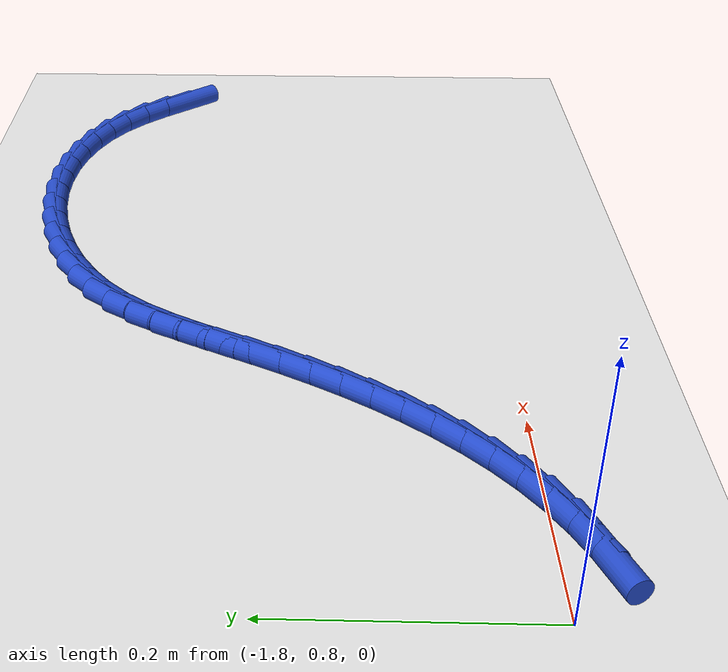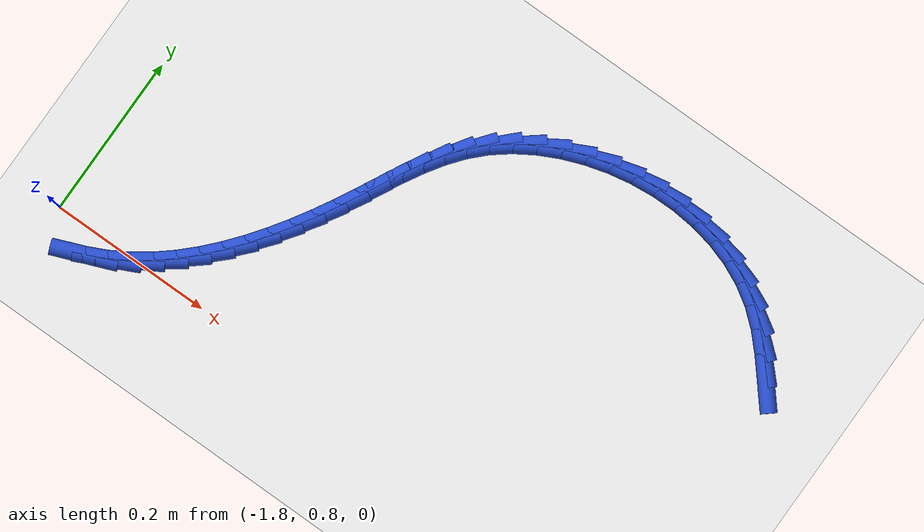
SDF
<sdf version="1.6">
 <world name="default">
  <model name="ground_plane">
   <static>1</static>
   <link name="link">
    <collision name="collision">
     <geometry><plane><normal>0 0 1</normal><size>100 100</size></plane></geometry>
     <surface><friction><ode><mu>100</mu><mu2>50</mu2></ode></friction></surface>
    </collision>
    <visual name="visual">
     <cast_shadows>0</cast_shadows>
     <geometry><plane><normal>0 0 1</normal><size>100 100</size></plane></geometry>
     <material>
      <script><uri>file://media/materials/scripts/gazebo.material</uri><name>Gazebo/WhiteGlow</name></script>
     </material>
    </visual>
   </link>
  </model>
  <model name="line">
   <link name="link_69">
    <pose>-1.031463528174129 1.1080222814655913 0.01 0 1.57 -0.8649918103429828</pose>
    <collision name="collision">
     <geometry><cylinder><radius>0.01</radius><length>0.08</length></cylinder></geometry>
    </collision>
    <visual name="visual">
     <material>
      <script><name>Gazebo/Blue</name><uri>file://media/materials/scripts/gazebo.material</uri></script>
     </material>
     <geometry><cylinder><radius>0.01</radius><length>0.08</length></cylinder></geometry>
    </visual>
   </link>
   <link name="link_70">
    <pose>-1.0502128655851939 1.130021838430915 0.01 0 1.57 -0.8063911086124225</pose>
    <collision name="collision">
     <geometry><cylinder><radius>0.01</radius><length>0.08</length></cylinder></geometry>
    </collision>
    <visual name="visual">
     <material>
      <script><name>Gazebo/Blue</name><uri>file://media/materials/scripts/gazebo.material</uri></script>
     </material>
     <geometry><cylinder><radius>0.01</radius><length>0.08</length></cylinder></geometry>
    </visual>
   </link>
   <link name="link_71">
    <pose>-1.0701868591447605 1.1508525691921232 0.01 0 1.57 -0.6985569765102941</pose>
    <collision name="collision">
     <geometry><cylinder><radius>0.01</radius><length>0.08</length></cylinder></geometry>
    </collision>
    <visual name="visual">
     <material>
      <script><name>Gazebo/Blue</name><uri>file://media/materials/scripts/gazebo.material</uri></script>
     </material>
     <geometry><cylinder><radius>0.01</radius><length>0.08</length></cylinder></geometry>
    </visual>
   </link>
   <link name="link_72">
    <pose>-1.0920416746841424 1.1692067808503241 0.01 0 1.57 -0.5595140066091934</pose>
    <collision name="collision">
     <geometry><cylinder><radius>0.01</radius><length>0.08</length></cylinder></geometry>
    </collision>
    <visual name="visual">
     <material>
      <script><name>Gazebo/Blue</name><uri>file://media/materials/scripts/gazebo.material</uri></script>
     </material>
     <geometry><cylinder><radius>0.01</radius><length>0.08</length></cylinder></geometry>
    </visual>
   </link>
   <link name="link_73">
    <pose>-1.1160795489195625 1.184261045742481 0.01 0 1.57 -0.4267110209482854</pose>
    <collision name="collision">
     <geometry><cylinder><radius>0.01</radius><length>0.08</length></cylinder></geometry>
    </collision>
    <visual name="visual">
     <material>
      <script><name>Gazebo/Blue</name><uri>file://media/materials/scripts/gazebo.material</uri></script>
     </material>
     <geometry><cylinder><radius>0.01</radius><length>0.08</length></cylinder></geometry>
    </visual>
   </link>
   <link name="link_74">
    <pose>-1.1419840514399409 1.1960384305162701 0.01 0 1.57 -0.3045058960654811</pose>
    <collision name="collision">
     <geometry><cylinder><radius>0.01</radius><length>0.08</length></cylinder></geometry>
    </collision>
    <visual name="visual">
     <material>
      <script><name>Gazebo/Blue</name><uri>file://media/materials/scripts/gazebo.material</uri></script>
     </material>
     <geometry><cylinder><radius>0.01</radius><length>0.08</length></cylinder></geometry>
    </visual>
   </link>
   <link name="link_75">
    <pose>-1.1693764064032102 1.2046473062590226 0.01 0 1.57 -0.19227765522447926</pose>
    <collision name="collision">
     <geometry><cylinder><radius>0.01</radius><length>0.08</length></cylinder></geometry>
    </collision>
    <visual name="visual">
     <material>
      <script><name>Gazebo/Blue</name><uri>file://media/materials/scripts/gazebo.material</uri></script>
     </material>
     <geometry><cylinder><radius>0.01</radius><length>0.08</length></cylinder></geometry>
    </visual>
   </link>
   <link name="link_76">
    <pose>-1.1978778379673056 1.2101960440580701 0.01 0 1.57 -0.0886081852951144</pose>
    <collision name="collision">
     <geometry><cylinder><radius>0.01</radius><length>0.08</length></cylinder></geometry>
    </collision>
    <visual name="visual">
     <material>
      <script><name>Gazebo/Blue</name><uri>file://media/materials/scripts/gazebo.material</uri></script>
     </material>
     <geometry><cylinder><radius>0.01</radius><length>0.08</length></cylinder></geometry>
    </visual>
   </link>
   <link name="link_77">
    <pose>-1.2271095702901607 1.2127930150007447 0.01 0 1.57 0.008329682058506774</pose>
    <collision name="collision">
     <geometry><cylinder><radius>0.01</radius><length>0.08</length></cylinder></geometry>
    </collision>
    <visual name="visual">
     <material>
      <script><name>Gazebo/Blue</name><uri>file://media/materials/scripts/gazebo.material</uri></script>
     </material>
     <geometry><cylinder><radius>0.01</radius><length>0.08</length></cylinder></geometry>
    </visual>
   </link>
   <link name="link_78">
    <pose>-1.256692827529709 1.212546590174377 0.01 0 1.57 0.10053449087895906</pose>
    <collision name="collision">
     <geometry><cylinder><radius>0.01</radius><length>0.08</length></cylinder></geometry>
    </collision>
    <visual name="visual">
     <material>
      <script><name>Gazebo/Blue</name><uri>file://media/materials/scripts/gazebo.material</uri></script>
     </material>
     <geometry><cylinder><radius>0.01</radius><length>0.08</length></cylinder></geometry>
    </visual>
   </link>
   <link name="link_79">
    <pose>-1.2862488338438847 1.2095651406662997 0.01 0 1.57 0.19006562579602831</pose>
    <collision name="collision">
     <geometry><cylinder><radius>0.01</radius><length>0.08</length></cylinder></geometry>
    </collision>
    <visual name="visual">
     <material>
      <script><name>Gazebo/Blue</name><uri>file://media/materials/scripts/gazebo.material</uri></script>
     </material>
     <geometry><cylinder><radius>0.01</radius><length>0.08</length></cylinder></geometry>
    </visual>
   </link>
   <link name="link_80">
    <pose>-1.3153988133906218 1.2039570375638442 0.01 0 1.57 0.27901818270972845</pose>
    <collision name="collision">
     <geometry><cylinder><radius>0.01</radius><length>0.08</length></cylinder></geometry>
    </collision>
    <visual name="visual">
     <material>
      <script><name>Gazebo/Blue</name><uri>file://media/materials/scripts/gazebo.material</uri></script>
     </material>
     <geometry><cylinder><radius>0.01</radius><length>0.08</length></cylinder></geometry>
    </visual>
   </link>
   <link name="link_81">
    <pose>-1.3437639903278542 1.1958306519543416 0.01 0 1.57 0.3695461246600823</pose>
    <collision name="collision">
     <geometry><cylinder><radius>0.01</radius><length>0.08</length></cylinder></geometry>
    </collision>
    <visual name="visual">
     <material>
      <script><name>Gazebo/Blue</name><uri>file://media/materials/scripts/gazebo.material</uri></script>
     </material>
     <geometry><cylinder><radius>0.01</radius><length>0.08</length></cylinder></geometry>
    </visual>
   </link>
   <link name="link_82">
    <pose>-1.3709655888135162 1.1852943549251238 0.01 0 1.57 0.46390371049397566</pose>
    <collision name="collision">
     <geometry><cylinder><radius>0.01</radius><length>0.08</length></cylinder></geometry>
    </collision>
    <visual name="visual">
     <material>
      <script><name>Gazebo/Blue</name><uri>file://media/materials/scripts/gazebo.material</uri></script>
     </material>
     <geometry><cylinder><radius>0.01</radius><length>0.08</length></cylinder></geometry>
    </visual>
   </link>
   <link name="link_83">
    <pose>-1.3966248330055409 1.172456517563522 0.01 0 1.57 0.5644752112436878</pose>
    <collision name="collision">
     <geometry><cylinder><radius>0.01</radius><length>0.08</length></cylinder></geometry>
    </collision>
    <visual name="visual">
     <material>
      <script><name>Gazebo/Blue</name><uri>file://media/materials/scripts/gazebo.material</uri></script>
     </material>
     <geometry><cylinder><radius>0.01</radius><length>0.08</length></cylinder></geometry>
    </visual>
   </link>
   <link name="link_84">
    <pose>-1.4203629470618626 1.1574255109568679 0.01 0 1.57 0.6737514505017903</pose>
    <collision name="collision">
     <geometry><cylinder><radius>0.01</radius><length>0.08</length></cylinder></geometry>
    </collision>
    <visual name="visual">
     <material>
      <script><name>Gazebo/Blue</name><uri>file://media/materials/scripts/gazebo.material</uri></script>
     </material>
     <geometry><cylinder><radius>0.01</radius><length>0.08</length></cylinder></geometry>
    </visual>
   </link>
   <link name="link_85">
    <pose>-1.441801155140416 1.1403097061924938 0.01 0 1.57 0.7930824446731769</pose>
    <collision name="collision">
     <geometry><cylinder><radius>0.01</radius><length>0.08</length></cylinder></geometry>
    </collision>
    <visual name="visual">
     <material>
      <script><name>Gazebo/Blue</name><uri>file://media/materials/scripts/gazebo.material</uri></script>
     </material>
     <geometry><cylinder><radius>0.01</radius><length>0.08</length></cylinder></geometry>
    </visual>
   </link>
   <link name="link_86">
    <pose>-1.46059423876551 1.1212255575315921 0.01 0 1.57 0.9056455806511068</pose>
    <collision name="collision">
     <geometry><cylinder><radius>0.01</radius><length>0.08</length></cylinder></geometry>
    </collision>
    <visual name="visual">
     <material>
      <script><name>Gazebo/Blue</name><uri>file://media/materials/scripts/gazebo.material</uri></script>
     </material>
     <geometry><cylinder><radius>0.01</radius><length>0.08</length></cylinder></geometry>
    </visual>
   </link>
   <link name="link_87">
    <pose>-1.4769178686747995 1.100414989095741 0.01 0 1.57 0.9940038117101611</pose>
    <collision name="collision">
     <geometry><cylinder><radius>0.01</radius><length>0.08</length></cylinder></geometry>
    </collision>
    <visual name="visual">
     <material>
      <script><name>Gazebo/Blue</name><uri>file://media/materials/scripts/gazebo.material</uri></script>
     </material>
     <geometry><cylinder><radius>0.01</radius><length>0.08</length></cylinder></geometry>
    </visual>
   </link>
   <link name="link_88">
    <pose>-1.491358520066373 1.0782188780602113 0.01 0 1.57 1.055669327323574</pose>
    <collision name="collision">
     <geometry><cylinder><radius>0.01</radius><length>0.08</length></cylinder></geometry>
    </collision>
    <visual name="visual">
     <material>
      <script><name>Gazebo/Blue</name><uri>file://media/materials/scripts/gazebo.material</uri></script>
     </material>
     <geometry><cylinder><radius>0.01</radius><length>0.08</length></cylinder></geometry>
    </visual>
   </link>
   <link name="link_89">
    <pose>-1.504513818778972 1.0549807875252073 0.01 0 1.57 1.0906002266453463</pose>
    <collision name="collision">
     <geometry><cylinder><radius>0.01</radius><length>0.08</length></cylinder></geometry>
    </collision>
    <visual name="visual">
     <material>
      <script><name>Gazebo/Blue</name><uri>file://media/materials/scripts/gazebo.material</uri></script>
     </material>
     <geometry><cylinder><radius>0.01</radius><length>0.08</length></cylinder></geometry>
    </visual>
   </link>
   <link name="link_90">
    <pose>-1.516981390651337 1.031044280590934 0.01 0 1.57 1.099544204715864</pose>
    <collision name="collision">
     <geometry><cylinder><radius>0.01</radius><length>0.08</length></cylinder></geometry>
    </collision>
    <visual name="visual">
     <material>
      <script><name>Gazebo/Blue</name><uri>file://media/materials/scripts/gazebo.material</uri></script>
     </material>
     <geometry><cylinder><radius>0.01</radius><length>0.08</length></cylinder></geometry>
    </visual>
   </link>
   <link name="link_91">
    <pose>-1.5293588615222087 1.0067529203575953 0.01 0 1.57 1.0839855255790194</pose>
    <collision name="collision">
     <geometry><cylinder><radius>0.01</radius><length>0.08</length></cylinder></geometry>
    </collision>
    <visual name="visual">
     <material>
      <script><name>Gazebo/Blue</name><uri>file://media/materials/scripts/gazebo.material</uri></script>
     </material>
     <geometry><cylinder><radius>0.01</radius><length>0.08</length></cylinder></geometry>
    </visual>
   </link>
   <link name="link_92">
    <pose>-1.5422250178712786 0.9824449825350228 0.01 0 1.57 1.0552663763679404</pose>
    <collision name="collision">
     <geometry><cylinder><radius>0.01</radius><length>0.08</length></cylinder></geometry>
    </collision>
    <visual name="visual">
     <material>
      <script><name>Gazebo/Blue</name><uri>file://media/materials/scripts/gazebo.material</uri></script>
     </material>
     <geometry><cylinder><radius>0.01</radius><length>0.08</length></cylinder></geometry>
    </visual>
   </link>
   <link name="link_93">
    <pose>-1.5558635466571789 0.9583759212061321 0.01 0 1.57 1.021830143758305</pose>
    <collision name="collision">
     <geometry><cylinder><radius>0.01</radius><length>0.08</length></cylinder></geometry>
    </collision>
    <visual name="visual">
     <material>
      <script><name>Gazebo/Blue</name><uri>file://media/materials/scripts/gazebo.material</uri></script>
     </material>
     <geometry><cylinder><radius>0.01</radius><length>0.08</length></cylinder></geometry>
    </visual>
   </link>
   <link name="link_94">
    <pose>-1.5703240166690704 0.9347354836454479 0.01 0 1.57 0.983506902265941</pose>
    <collision name="collision">
     <geometry><cylinder><radius>0.01</radius><length>0.08</length></cylinder></geometry>
    </collision>
    <visual name="visual">
     <material>
      <script><name>Gazebo/Blue</name><uri>file://media/materials/scripts/gazebo.material</uri></script>
     </material>
     <geometry><cylinder><radius>0.01</radius><length>0.08</length></cylinder></geometry>
    </visual>
   </link>
   <link name="link_95">
    <pose>-1.585649558846788 0.9117116103026196 0.01 0 1.57 0.9398192109483645</pose>
    <collision name="collision">
     <geometry><cylinder><radius>0.01</radius><length>0.08</length></cylinder></geometry>
    </collision>
    <visual name="visual">
     <material>
      <script><name>Gazebo/Blue</name><uri>file://media/materials/scripts/gazebo.material</uri></script>
     </material>
     <geometry><cylinder><radius>0.01</radius><length>0.08</length></cylinder></geometry>
    </visual>
   </link>
   <link name="link_96">
    <pose>-1.601883304130166 0.8894922416272976 0.01 0 1.57 0.8902358489001854</pose>
    <collision name="collision">
     <geometry><cylinder><radius>0.01</radius><length>0.08</length></cylinder></geometry>
    </collision>
    <visual name="visual">
     <material>
      <script><name>Gazebo/Blue</name><uri>file://media/materials/scripts/gazebo.material</uri></script>
     </material>
     <geometry><cylinder><radius>0.01</radius><length>0.08</length></cylinder></geometry>
    </visual>
   </link>
   <link name="link_97">
    <pose>-1.6190683834590407 0.8682653180691318 0.01 0 1.57 0.8342002158210859</pose>
    <collision name="collision">
     <geometry><cylinder><radius>0.01</radius><length>0.08</length></cylinder></geometry>
    </collision>
    <visual name="visual">
     <material>
      <script><name>Gazebo/Blue</name><uri>file://media/materials/scripts/gazebo.material</uri></script>
     </material>
     <geometry><cylinder><radius>0.01</radius><length>0.08</length></cylinder></geometry>
    </visual>
   </link>
   <link name="link_98">
    <pose>-1.6372479277732468 0.8482187800777728 0.01 0 1.57 0.771177634902061</pose>
    <collision name="collision">
     <geometry><cylinder><radius>0.01</radius><length>0.08</length></cylinder></geometry>
    </collision>
    <visual name="visual">
     <material>
      <script><name>Gazebo/Blue</name><uri>file://media/materials/scripts/gazebo.material</uri></script>
     </material>
     <geometry><cylinder><radius>0.01</radius><length>0.08</length></cylinder></geometry>
    </visual>
   </link>
   <link name="link_99">
    <pose>-1.656465068012619 0.8295405681028705 0.01 0 1.57 0.7007283488129636</pose>
    <collision name="collision">
     <geometry><cylinder><radius>0.01</radius><length>0.08</length></cylinder></geometry>
    </collision>
    <visual name="visual">
     <material>
      <script><name>Gazebo/Blue</name><uri>file://media/materials/scripts/gazebo.material</uri></script>
     </material>
     <geometry><cylinder><radius>0.01</radius><length>0.08</length></cylinder></geometry>
    </visual>
   </link>
   <link name="link_100">
    <pose>-1.6767629351169928 0.812418622594075 0.01 0 1.57 0.6226103694188753</pose>
    <collision name="collision">
     <geometry><cylinder><radius>0.01</radius><length>0.08</length></cylinder></geometry>
    </collision>
    <visual name="visual">
     <material>
      <script><name>Gazebo/Blue</name><uri>file://media/materials/scripts/gazebo.material</uri></script>
     </material>
     <geometry><cylinder><radius>0.01</radius><length>0.08</length></cylinder></geometry>
    </visual>
   </link>
   <link name="link_101">
    <pose>-1.6981846600262038 0.7970408840010367 0.01 0 1.57 0.5369084002489682</pose>
    <collision name="collision">
     <geometry><cylinder><radius>0.01</radius><length>0.08</length></cylinder></geometry>
    </collision>
    <visual name="visual">
     <material>
      <script><name>Gazebo/Blue</name><uri>file://media/materials/scripts/gazebo.material</uri></script>
     </material>
     <geometry><cylinder><radius>0.01</radius><length>0.08</length></cylinder></geometry>
    </visual>
   </link>
   <link name="link_102">
    <pose>-1.7207733736800863 0.7835952927734058 0.01 0 1.57 0.4475327010091419</pose>
    <collision name="collision">
     <geometry><cylinder><radius>0.01</radius><length>0.08</length></cylinder></geometry>
    </collision>
    <visual name="visual">
     <material>
      <script><name>Gazebo/Blue</name><uri>file://media/materials/scripts/gazebo.material</uri></script>
     </material>
     <geometry><cylinder><radius>0.01</radius><length>0.08</length></cylinder></geometry>
    </visual>
   </link>
   <link name="link_103">
    <pose>-1.744534693752783 0.7721894870841439 0.01 0 1.57 0.3774363834782706</pose>
    <collision name="collision">
     <geometry><cylinder><radius>0.01</radius><length>0.08</length></cylinder></geometry>
    </collision>
    <visual name="visual">
     <material>
      <script><name>Gazebo/Blue</name><uri>file://media/materials/scripts/gazebo.material</uri></script>
     </material>
     <geometry><cylinder><radius>0.01</radius><length>0.08</length></cylinder></geometry>
    </visual>
   </link>
  </model>
 </world>
</sdf>
